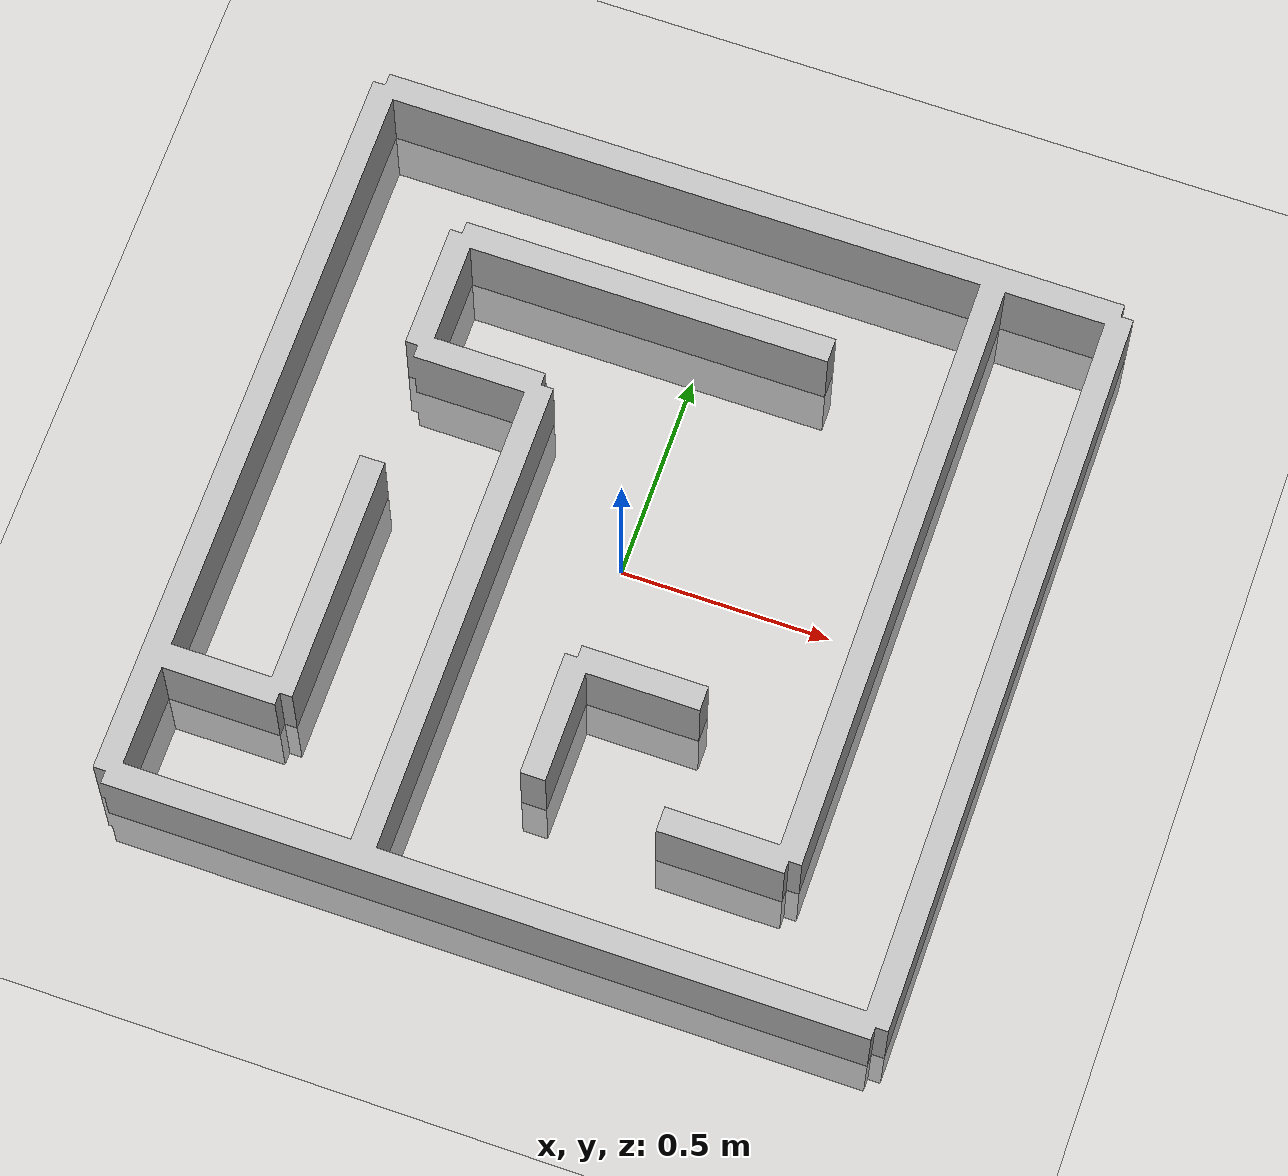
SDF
<?xml version='1.0'?>
<sdf version='1.7'>
  <world name='maze_world'>

    <light type="directional" name="sun">
      <cast_shadows>true</cast_shadows>
      <pose>0 0 10 0 0 0</pose>
      <diffuse>0.8 0.8 0.8 1</diffuse>
      <specular>0.2 0.2 0.2 1</specular>
      <direction>-0.5 0.1 -0.9</direction>
    </light>
      <model name='ground'>
    <static>true</static>
    <link name='link'>
      <collision name='collision'>
        <geometry>
          <plane>
            <normal>0 0 1</normal>
            <size>3.5999999999999996 3.5999999999999996</size>
          </plane>
        </geometry>
      </collision>
      <visual name='visual'>
        <geometry>
          <plane>
            <normal>0 0 1</normal>
            <size>3.5999999999999996 3.5999999999999996</size>
          </plane>
        </geometry>
      </visual>
    </link>
  </model>
  <model name='maze'>
    <static>true</static>
    <link name='link'>
      <visual name='visual'>
        <geometry>
          <mesh>
            <uri>file:///home/rey/Desktop/Maze Solver/robot_maze_ws/src/robot_maze_simulation/generated/maze_seed777_r6_c6_cs0p30_mesh.sdf.stl</uri>
          </mesh>
        </geometry>
      </visual>
      <collision name='collision'>
        <geometry>
          <mesh>
            <uri>file:///home/rey/Desktop/Maze Solver/robot_maze_ws/src/robot_maze_simulation/generated/maze_seed777_r6_c6_cs0p30_mesh.sdf.stl</uri>
          </mesh>
        </geometry>
      </collision>
    </link>
  </model>

  </world>
</sdf>
